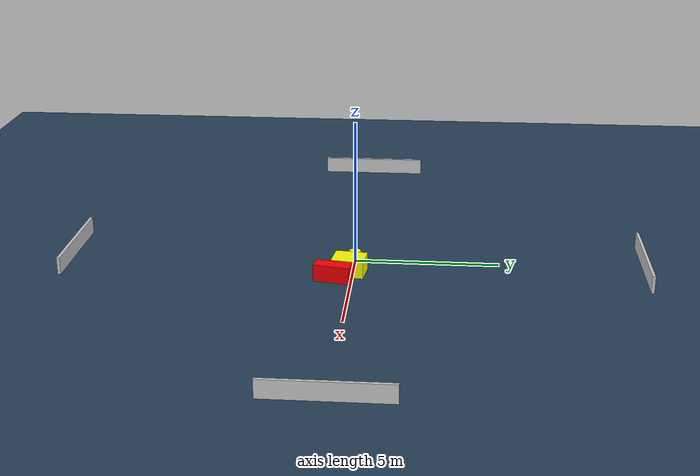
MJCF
<?xml version="1.0" ?>
<mujoco model="generated_environment">
  <option timestep="0.01" integrator="RK4" cone="elliptic"/>
  <default>
    <geom density="1"/>
  </default>
  <asset>
    <texture builtin="gradient" height="3072" name="skybox" rgb1="0.3 0.5 0.7" rgb2="0 0 0" type="skybox" width="512"/>
    <texture builtin="checker" height="300" name="groundplane" rgb1="0.2 0.3 0.4" rgb2="0.1 0.2 0.3" type="2d" width="300"/>
    <material name="groundplane" reflectance="0.2" texrepeat="5 5" texture="groundplane"/>
  </asset>
  <worldbody>
    <light dir="0 0 -1" directional="true" pos="0 0 1.5"/>
    <geom condim="3" friction="0.5 0.005 0.001" material="groundplane" name="floor" pos="0 0 0" size="0 0 0.05" type="plane"/>
    <body name="walls">
      <geom name="wall_1" condim="4" pos="-10.0 0.0 0.3" rgba="0.800000011920929 0.800000011920929 0.800000011920929 1.0" size="0.05 2.0 0.3" type="box"/>
      <geom name="wall_2" condim="4" pos="10.0 0.0 0.3" rgba="0.800000011920929 0.800000011920929 0.800000011920929 1.0" size="0.05 2.0 0.3" type="box"/>
      <geom name="wall_3" condim="4" pos="0.0 -10.0 0.3" rgba="0.800000011920929 0.800000011920929 0.800000011920929 1.0" size="2.0 0.05 0.3" type="box"/>
      <geom name="wall_4" condim="4" pos="0.0 10.0 0.3" rgba="0.800000011920929 0.800000011920929 0.800000011920929 1.0" size="2.0 0.05 0.3" type="box"/>
    </body>
    <body name="robot">
      <joint name="joint_x" type="slide" pos="0 0 0" axis="1 0 0"/>
      <joint name="joint_y" type="slide" pos="0 0 0" axis="0 1 0"/>
      <geom name="robot" type="cylinder" pos="0.0 0.0 0.2" size="0.2 0.2 0.0" mass="5.0" friction="1.0 0.005 0.0001" condim="4" rgba="1.0 1.0 0.0 1.0"/>
    </body>
    <body name="obstacle_1_movable">
      <geom name="obstacle_1_movable" condim="4" pos="1.057468696833625 -0.11792753932318381 0.3" euler="0 0 83.36164961669067" friction="0.0 0.005 0.001" rgba="1.0 1.0 0.0 1.0" size="0.5558435301390345 0.45493142664588426 0.3" type="box" mass="0.1"/>
      <joint type="free"/>
    </body>
    <body name="obstacle_2_static">
      <geom name="obstacle_2_static" condim="4" pos="1.7541073281162196 -0.6249172760049341 0.3" euler="0 0 168.2630536510492" friction="0.0 0.005 0.001" rgba="1.0 0.0 0.0 1.0" size="0.25610928957320567 0.6265025971902228 0.3" type="box"/>
    </body>
  </worldbody>
  <actuator>
    <motor name="actuator_x" joint="joint_x" gear="1" ctrlrange="-1 1"/>
    <motor name="actuator_y" joint="joint_y" gear="1" ctrlrange="-1 1"/>
  </actuator>
</mujoco>
